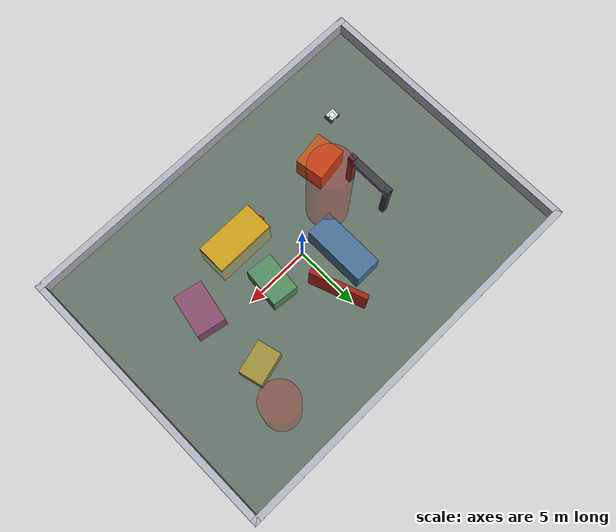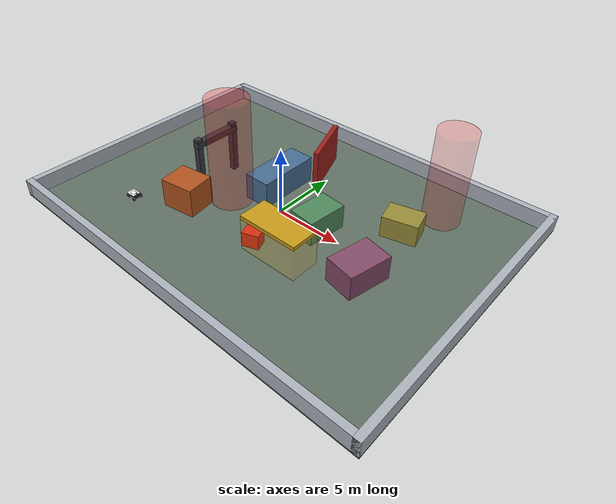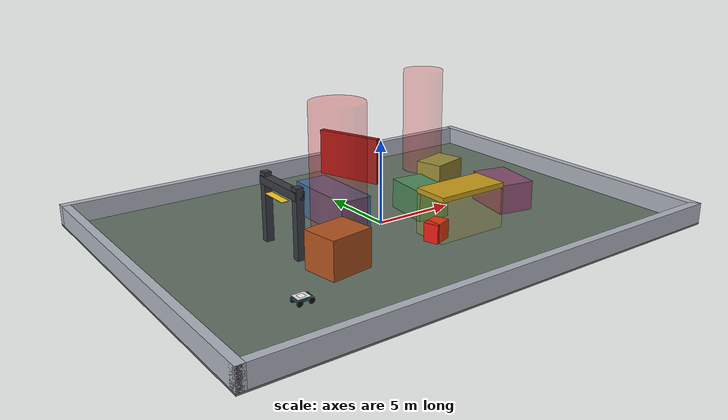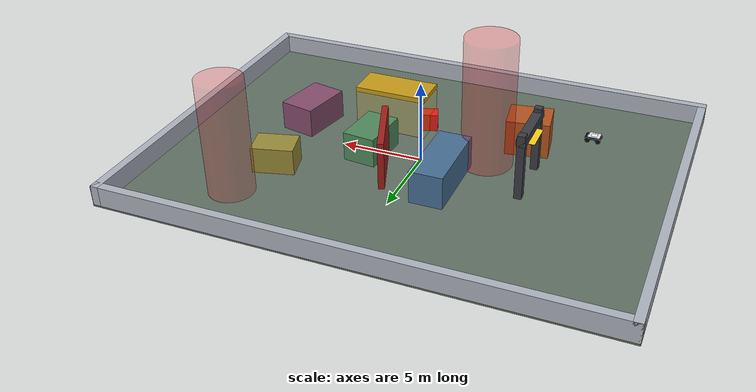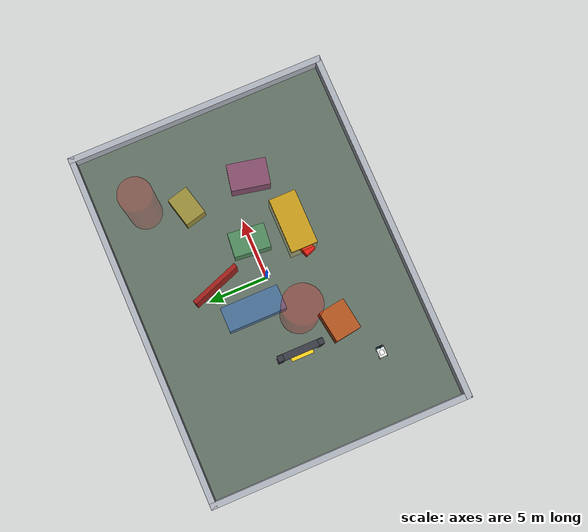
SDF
<sdf version="1.9">
 <world name="air_ground_cooperative">
  <physics name="1ms" type="ignore">
   <max_step_size>0.001</max_step_size>
   <real_time_factor>1.0</real_time_factor>
  </physics>
  <plugin filename="gz-sim-physics-system" name="gz::sim::systems::Physics"/>
  <plugin filename="gz-sim-sensors-system" name="gz::sim::systems::Sensors">
   <render_engine>ogre2</render_engine>
  </plugin>
  <plugin filename="gz-sim-user-commands-system" name="gz::sim::systems::UserCommands"/>
  <plugin filename="gz-sim-scene-broadcaster-system" name="gz::sim::systems::SceneBroadcaster"/>
  <plugin filename="gz-sim-imu-system" name="gz::sim::systems::Imu"/>
  <plugin filename="gz-sim-navsat-system" name="gz::sim::systems::NavSat"/>
  <plugin filename="gz-sim-magnetometer-system" name="gz::sim::systems::Magnetometer"/>
  <plugin filename="gz-sim-air-pressure-system" name="gz::sim::systems::AirPressure"/>
  <scene>
   <ambient>0.72 0.75 0.78 1</ambient>
   <background>0.44 0.62 0.78 1</background>
   <shadows>true</shadows>
  </scene>
  <spherical_coordinates>
   <latitude_deg>-35.363262</latitude_deg>
   <longitude_deg>149.165237</longitude_deg>
   <elevation>584</elevation>
   <heading_deg>0</heading_deg>
   <surface_model>EARTH_WGS84</surface_model>
  </spherical_coordinates>
  <light type="directional" name="sun">
   <pose>0 0 24 0 0 0</pose>
   <diffuse>0.95 0.94 0.90 1</diffuse>
   <specular>0.20 0.20 0.20 1</specular>
   <direction>-0.45 0.20 -0.86</direction>
  </light>
  <model name="mission_ground">
   <static>true</static>
   <link name="link">
    <pose>0 0 -0.05 0 0 0</pose>
    <collision name="collision"><geometry><box><size>30 22 0.10</size></box></geometry></collision>
    <visual name="visual">
     <geometry><box><size>30 22 0.10</size></box></geometry>
     <material><ambient>0.31 0.36 0.32 1</ambient><diffuse>0.38 0.44 0.39 1</diffuse></material>
    </visual>
   </link>
  </model>
  <model name="west_wall">
   <static>true</static>
   <pose>-14.75 0 0.60 0 0 0</pose>
   <link name="link">
    <collision name="collision"><geometry><box><size>0.5 22 1.2</size></box></geometry></collision>
    <visual name="visual">
     <geometry><box><size>0.5 22 1.2</size></box></geometry>
     <material><ambient>0.56 0.58 0.62 1</ambient><diffuse>0.68 0.70 0.74 1</diffuse></material>
    </visual>
   </link>
  </model>
  <model name="east_wall">
   <static>true</static>
   <pose>14.75 0 0.60 0 0 0</pose>
   <link name="link">
    <collision name="collision"><geometry><box><size>0.5 22 1.2</size></box></geometry></collision>
    <visual name="visual">
     <geometry><box><size>0.5 22 1.2</size></box></geometry>
     <material><ambient>0.56 0.58 0.62 1</ambient><diffuse>0.68 0.70 0.74 1</diffuse></material>
    </visual>
   </link>
  </model>
  <model name="north_wall">
   <static>true</static>
   <pose>0 10.75 0.60 0 0 0</pose>
   <link name="link">
    <collision name="collision"><geometry><box><size>30 0.5 1.2</size></box></geometry></collision>
    <visual name="visual">
     <geometry><box><size>30 0.5 1.2</size></box></geometry>
     <material><ambient>0.56 0.58 0.62 1</ambient><diffuse>0.68 0.70 0.74 1</diffuse></material>
    </visual>
   </link>
  </model>
  <model name="south_wall">
   <static>true</static>
   <pose>0 -10.75 0.60 0 0 0</pose>
   <link name="link">
    <collision name="collision"><geometry><box><size>30 0.5 1.2</size></box></geometry></collision>
    <visual name="visual">
     <geometry><box><size>30 0.5 1.2</size></box></geometry>
     <material><ambient>0.56 0.58 0.62 1</ambient><diffuse>0.68 0.70 0.74 1</diffuse></material>
    </visual>
   </link>
  </model>
  <model name="warehouse_a">
   <static>true</static>
   <pose>-5.5 -3.8 1.1 0 0 0.15</pose>
   <link name="link">
    <collision name="collision"><geometry><box><size>2.6 2.2 2.2</size></box></geometry></collision>
    <visual name="visual">
     <geometry><box><size>2.6 2.2 2.2</size></box></geometry>
     <material><ambient>0.55 0.25 0.10 1</ambient><diffuse>0.70 0.33 0.12 1</diffuse></material>
    </visual>
   </link>
  </model>
  <model name="warehouse_b">
   <static>true</static>
   <pose>-2.0 2.0 1.0 0 0 0</pose>
   <link name="link">
    <collision name="collision"><geometry><box><size>2.0 4.8 2.0</size></box></geometry></collision>
    <visual name="visual">
     <geometry><box><size>2.0 4.8 2.0</size></box></geometry>
     <material><ambient>0.22 0.32 0.43 1</ambient><diffuse>0.28 0.43 0.58 1</diffuse></material>
    </visual>
   </link>
  </model>
  <model name="warehouse_c">
   <static>true</static>
   <pose>3.1 0.2 0.9 0 0 -0.10</pose>
   <link name="link">
    <collision name="collision"><geometry><box><size>2.0 3.0 1.8</size></box></geometry></collision>
    <visual name="visual">
     <geometry><box><size>2.0 3.0 1.8</size></box></geometry>
     <material><ambient>0.25 0.42 0.28 1</ambient><diffuse>0.31 0.54 0.36 1</diffuse></material>
    </visual>
   </link>
  </model>
  <model name="warehouse_d">
   <static>true</static>
   <pose>7.6 3.7 0.8 0 0 0.25</pose>
   <link name="link">
    <collision name="collision"><geometry><box><size>2.5 1.8 1.6</size></box></geometry></collision>
    <visual name="visual">
     <geometry><box><size>2.5 1.8 1.6</size></box></geometry>
     <material><ambient>0.45 0.42 0.18 1</ambient><diffuse>0.60 0.55 0.22 1</diffuse></material>
    </visual>
   </link>
  </model>
  <model name="warehouse_e">
   <static>true</static>
   <pose>8.0 -1.8 0.9 0 0 -0.20</pose>
   <link name="link">
    <collision name="collision"><geometry><box><size>2.2 3.2 1.8</size></box></geometry></collision>
    <visual name="visual">
     <geometry><box><size>2.2 3.2 1.8</size></box></geometry>
     <material><ambient>0.38 0.22 0.30 1</ambient><diffuse>0.52 0.30 0.42 1</diffuse></material>
    </visual>
   </link>
  </model>
  <model name="unmapped_pallet">
   <static>true</static>
   <pose>1.0 -3.8 0.55 0 0 0.35</pose>
   <link name="link">
    <collision name="collision"><geometry><box><size>1.2 0.9 1.1</size></box></geometry></collision>
    <visual name="visual">
     <geometry><box><size>1.2 0.9 1.1</size></box></geometry>
     <material><ambient>0.70 0.08 0.06 1</ambient><diffuse>0.90 0.12 0.08 1</diffuse></material>
    </visual>
   </link>
  </model>
  <model name="aerial_gate">
   <static>true</static>
   <pose>-6.5 0 0 0 0 0</pose>
   <link name="link">
    <collision name="left_column_collision">
     <pose>0 1.65 2.0 0 0 0</pose>
     <geometry><box><size>0.45 0.45 4.0</size></box></geometry>
    </collision>
    <collision name="right_column_collision">
     <pose>0 -1.65 2.0 0 0 0</pose>
     <geometry><box><size>0.45 0.45 4.0</size></box></geometry>
    </collision>
    <collision name="crossbar_collision">
     <pose>0 0 3.55 0 0 0</pose>
     <geometry><box><size>0.55 3.75 0.45</size></box></geometry>
    </collision>
    <visual name="left_column">
     <pose>0 1.65 2.0 0 0 0</pose>
     <geometry><box><size>0.45 0.45 4.0</size></box></geometry>
     <material><ambient>0.12 0.12 0.14 1</ambient><diffuse>0.22 0.23 0.26 1</diffuse></material>
    </visual>
    <visual name="right_column">
     <pose>0 -1.65 2.0 0 0 0</pose>
     <geometry><box><size>0.45 0.45 4.0</size></box></geometry>
     <material><ambient>0.12 0.12 0.14 1</ambient><diffuse>0.22 0.23 0.26 1</diffuse></material>
    </visual>
    <visual name="crossbar">
     <pose>0 0 3.55 0 0 0</pose>
     <geometry><box><size>0.55 3.75 0.45</size></box></geometry>
     <material><ambient>0.12 0.12 0.14 1</ambient><diffuse>0.22 0.23 0.26 1</diffuse></material>
    </visual>
    <visual name="height_label">
     <pose>-0.31 0 3.05 0 1.57079632679 0</pose>
     <geometry><box><size>0.02 1.8 0.45</size></box></geometry>
     <material><ambient>0.90 0.70 0.08 1</ambient><diffuse>1.0 0.82 0.10 1</diffuse></material>
    </visual>
   </link>
  </model>
  <model name="suspended_panel">
   <static>true</static>
   <pose>0.6 4.0 3.0 0 0 0.35</pose>
   <link name="link">
    <collision name="collision"><geometry><box><size>0.35 4.2 2.8</size></box></geometry></collision>
    <visual name="visual">
     <geometry><box><size>0.35 4.2 2.8</size></box></geometry>
     <material><ambient>0.40 0.08 0.08 1</ambient><diffuse>0.62 0.12 0.10 1</diffuse></material>
    </visual>
   </link>
  </model>
  <model name="low_ceiling">
   <static>true</static>
   <pose>3.0 -3.5 2.55 0 0 0</pose>
   <link name="link">
    <collision name="collision"><geometry><box><size>4.5 2.2 0.30</size></box></geometry></collision>
    <visual name="visual">
     <geometry><box><size>4.5 2.2 0.30</size></box></geometry>
     <material><ambient>0.58 0.45 0.08 1</ambient><diffuse>0.78 0.61 0.10 1</diffuse></material>
    </visual>
   </link>
  </model>
  <model name="no_fly_tower_volume">
   <static>true</static>
   <pose>-3.7 -1.2 4.0 0 0 0</pose>
   <link name="link">
    <visual name="volume">
     <transparency>0.74</transparency>
     <geometry><cylinder><radius>1.55</radius><length>8.0</length></cylinder></geometry>
     <material><ambient>0.65 0.02 0.02 0.28</ambient><diffuse>0.95 0.03 0.03 0.28</diffuse></material>
    </visual>
   </link>
  </model>
  <model name="height_limit_volume">
   <static>true</static>
   <pose>3.0 -3.5 1.15 0 0 0</pose>
   <link name="link">
    <visual name="volume">
     <transparency>0.80</transparency>
     <geometry><box><size>4.5 2.2 2.3</size></box></geometry>
     <material><ambient>0.80 0.58 0.02 0.20</ambient><diffuse>1.0 0.74 0.03 0.20</diffuse></material>
    </visual>
   </link>
  </model>
  <model name="no_fly_destination_volume">
   <static>true</static>
   <pose>8.7 6.9 3.5 0 0 0</pose>
   <link name="link">
    <visual name="volume">
     <transparency>0.78</transparency>
     <geometry><cylinder><radius>1.35</radius><length>7.0</length></cylinder></geometry>
     <material><ambient>0.65 0.02 0.02 0.24</ambient><diffuse>0.95 0.03 0.03 0.24</diffuse></material>
    </visual>
   </link>
  </model>
  <include><uri>model://hunter_ackermann</uri><name>ground_vehicle</name><pose>-9 -6 0 0 0 0</pose></include>
 </world>
</sdf>

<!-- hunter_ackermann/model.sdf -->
<sdf version="1.9">
  <model name="hunter_ackermann">
    <self_collide>false</self_collide>

    <!-- Hunter V2 dimensions used by the real driver and adapter:
         wheelbase 0.650 m, track 0.605 m, wheel radius 0.165 m. -->
    <link name="base_link">
      <pose>0 0 0.27 0 0 0</pose>
      <inertial>
        <mass>46.0</mass>
        <inertia>
          <ixx>1.55</ixx><iyy>2.75</iyy><izz>3.60</izz>
        </inertia>
      </inertial>
      <collision name="body_collision">
        <geometry><box><size>0.82 0.54 0.18</size></box></geometry>
      </collision>
      <visual name="body_visual">
        <geometry><box><size>0.82 0.54 0.18</size></box></geometry>
        <material>
          <ambient>0.03 0.12 0.16 1</ambient>
          <diffuse>0.05 0.28 0.36 1</diffuse>
          <specular>0.08 0.08 0.08 1</specular>
        </material>
      </visual>
      <visual name="front_bumper">
        <pose>0.45 0 -0.03 0 0 0</pose>
        <geometry><box><size>0.08 0.62 0.10</size></box></geometry>
        <material><ambient>0.04 0.04 0.04 1</ambient><diffuse>0.08 0.08 0.08 1</diffuse></material>
      </visual>
      <visual name="landing_pad">
        <pose>-0.05 0 0.105 0 0 0</pose>
        <geometry><box><size>0.74 0.64 0.018</size></box></geometry>
        <material><ambient>0.8 0.8 0.8 1</ambient><diffuse>0.9 0.9 0.9 1</diffuse></material>
      </visual>
      <collision name="landing_pad_collision">
        <pose>-0.05 0 0.105 0 0 0</pose>
        <geometry><box><size>0.74 0.64 0.018</size></box></geometry>
        <surface>
          <friction><ode><mu>1.4</mu><mu2>1.4</mu2></ode></friction>
          <contact><ode><kp>1000000</kp><kd>100</kd></ode></contact>
        </surface>
      </collision>
      <visual name="apriltag_id0">
        <pose>-0.05 0 0.115 0 0 0</pose>
        <geometry><plane><normal>0 0 1</normal><size>0.36 0.36</size></plane></geometry>
        <material>
          <ambient>1 1 1 1</ambient><diffuse>1 1 1 1</diffuse><specular>0 0 0 1</specular>
          <pbr>
            <metal>
              <albedo_map>model://ground_vehicle/materials/textures/tag36h11_id0.png</albedo_map>
              <metalness>0.0</metalness><roughness>1.0</roughness>
            </metal>
          </pbr>
        </material>
      </visual>
    </link>

    <link name="front_left_steering_link">
      <pose>0.325 0.3025 0.165 0 0 0</pose>
      <inertial><mass>0.35</mass><inertia><ixx>0.002</ixx><iyy>0.002</iyy><izz>0.002</izz></inertia></inertial>
      <visual name="hub"><geometry><cylinder><radius>0.035</radius><length>0.08</length></cylinder></geometry></visual>
    </link>
    <link name="front_right_steering_link">
      <pose>0.325 -0.3025 0.165 0 0 0</pose>
      <inertial><mass>0.35</mass><inertia><ixx>0.002</ixx><iyy>0.002</iyy><izz>0.002</izz></inertia></inertial>
      <visual name="hub"><geometry><cylinder><radius>0.035</radius><length>0.08</length></cylinder></geometry></visual>
    </link>

    <link name="front_left_wheel">
      <pose>0.325 0.3025 0.165 -1.57079632679 0 0</pose>
      <inertial><mass>2.2</mass><inertia><ixx>0.035</ixx><iyy>0.035</iyy><izz>0.060</izz></inertia></inertial>
      <collision name="collision">
        <geometry><cylinder><radius>0.165</radius><length>0.08</length></cylinder></geometry>
        <surface><friction><ode><mu>0.8</mu><mu2>1.4</mu2><fdir1>0 0 1</fdir1></ode></friction></surface>
      </collision>
      <visual name="visual"><geometry><cylinder><radius>0.165</radius><length>0.08</length></cylinder></geometry><material><ambient>0.02 0.02 0.02 1</ambient><diffuse>0.05 0.05 0.05 1</diffuse></material></visual>
    </link>
    <link name="front_right_wheel">
      <pose>0.325 -0.3025 0.165 -1.57079632679 0 0</pose>
      <inertial><mass>2.2</mass><inertia><ixx>0.035</ixx><iyy>0.035</iyy><izz>0.060</izz></inertia></inertial>
      <collision name="collision">
        <geometry><cylinder><radius>0.165</radius><length>0.08</length></cylinder></geometry>
        <surface><friction><ode><mu>0.8</mu><mu2>1.4</mu2><fdir1>0 0 1</fdir1></ode></friction></surface>
      </collision>
      <visual name="visual"><geometry><cylinder><radius>0.165</radius><length>0.08</length></cylinder></geometry><material><ambient>0.02 0.02 0.02 1</ambient><diffuse>0.05 0.05 0.05 1</diffuse></material></visual>
    </link>
    <link name="rear_left_wheel">
      <pose>-0.325 0.3025 0.165 -1.57079632679 0 0</pose>
      <inertial><mass>2.2</mass><inertia><ixx>0.035</ixx><iyy>0.035</iyy><izz>0.060</izz></inertia></inertial>
      <collision name="collision">
        <geometry><cylinder><radius>0.165</radius><length>0.08</length></cylinder></geometry>
        <surface><friction><ode><mu>0.8</mu><mu2>1.4</mu2><fdir1>0 0 1</fdir1></ode></friction></surface>
      </collision>
      <visual name="visual"><geometry><cylinder><radius>0.165</radius><length>0.08</length></cylinder></geometry><material><ambient>0.02 0.02 0.02 1</ambient><diffuse>0.05 0.05 0.05 1</diffuse></material></visual>
    </link>
    <link name="rear_right_wheel">
      <pose>-0.325 -0.3025 0.165 -1.57079632679 0 0</pose>
      <inertial><mass>2.2</mass><inertia><ixx>0.035</ixx><iyy>0.035</iyy><izz>0.060</izz></inertia></inertial>
      <collision name="collision">
        <geometry><cylinder><radius>0.165</radius><length>0.08</length></cylinder></geometry>
        <surface><friction><ode><mu>0.8</mu><mu2>1.4</mu2><fdir1>0 0 1</fdir1></ode></friction></surface>
      </collision>
      <visual name="visual"><geometry><cylinder><radius>0.165</radius><length>0.08</length></cylinder></geometry><material><ambient>0.02 0.02 0.02 1</ambient><diffuse>0.05 0.05 0.05 1</diffuse></material></visual>
    </link>

    <joint name="front_left_steering_joint" type="revolute">
      <parent>base_link</parent><child>front_left_steering_link</child>
      <axis><xyz>0 0 1</xyz><limit><lower>-0.52</lower><upper>0.52</upper><velocity>1.5</velocity><effort>80</effort></limit></axis>
    </joint>
    <joint name="front_right_steering_joint" type="revolute">
      <parent>base_link</parent><child>front_right_steering_link</child>
      <axis><xyz>0 0 1</xyz><limit><lower>-0.52</lower><upper>0.52</upper><velocity>1.5</velocity><effort>80</effort></limit></axis>
    </joint>
    <joint name="front_left_wheel_joint" type="revolute">
      <parent>front_left_steering_link</parent><child>front_left_wheel</child>
      <!-- The wheel links are rolled -90 deg so positive local-Z joint
           velocity propels the chassis along +X, matching ROS convention. -->
      <axis><xyz>0 0 1</xyz><limit><lower>-1.0e16</lower><upper>1.0e16</upper></limit></axis>
    </joint>
    <joint name="front_right_wheel_joint" type="revolute">
      <parent>front_right_steering_link</parent><child>front_right_wheel</child>
      <axis><xyz>0 0 1</xyz><limit><lower>-1.0e16</lower><upper>1.0e16</upper></limit></axis>
    </joint>
    <joint name="rear_left_wheel_joint" type="revolute">
      <parent>base_link</parent><child>rear_left_wheel</child>
      <axis><xyz>0 0 1</xyz><limit><lower>-1.0e16</lower><upper>1.0e16</upper></limit></axis>
    </joint>
    <joint name="rear_right_wheel_joint" type="revolute">
      <parent>base_link</parent><child>rear_right_wheel</child>
      <axis><xyz>0 0 1</xyz><limit><lower>-1.0e16</lower><upper>1.0e16</upper></limit></axis>
    </joint>

    <link name="lidar_link">
      <pose relative_to="base_link">0.30 0 0.18 0 0 0</pose>
      <gravity>false</gravity>
      <inertial><mass>0.20</mass><inertia><ixx>0.0004</ixx><iyy>0.0004</iyy><izz>0.0004</izz></inertia></inertial>
      <visual name="visual"><geometry><cylinder><radius>0.045</radius><length>0.055</length></cylinder></geometry><material><ambient>0.04 0.04 0.04 1</ambient><diffuse>0.10 0.10 0.10 1</diffuse></material></visual>
      <sensor name="lidar" type="gpu_lidar">
        <topic>/model/ground_vehicle/scan</topic>
        <gz_frame_id>laser_frame</gz_frame_id>
        <always_on>true</always_on><update_rate>6</update_rate><visualize>false</visualize>
        <lidar>
          <scan><horizontal><samples>360</samples><resolution>1</resolution><min_angle>-3.14159265359</min_angle><max_angle>3.14159265359</max_angle></horizontal></scan>
          <range><min>0.12</min><max>20.0</max><resolution>0.01</resolution></range>
          <noise><type>gaussian</type><mean>0.0</mean><stddev>0.01</stddev></noise>
        </lidar>
      </sensor>
    </link>
    <joint name="lidar_mount" type="fixed"><parent>base_link</parent><child>lidar_link</child></joint>

    <link name="front_camera_link">
      <pose relative_to="base_link">0.39 0 0.08 0 0 0</pose>
      <gravity>false</gravity>
      <inertial><mass>0.08</mass><inertia><ixx>0.0001</ixx><iyy>0.0001</iyy><izz>0.0001</izz></inertia></inertial>
      <visual name="visual"><geometry><box><size>0.05 0.06 0.04</size></box></geometry><material><ambient>0.05 0.05 0.05 1</ambient><diffuse>0.10 0.10 0.10 1</diffuse></material></visual>
      <sensor name="front_camera" type="camera">
        <topic>/model/ground_vehicle/front_camera</topic>
        <gz_frame_id>ugv_camera_link</gz_frame_id>
        <!-- The navigation stack uses lidar, not this operator video. Keep the
             camera dormant until the lazy dashboard bridge has a viewer. -->
        <always_on>false</always_on><update_rate>4</update_rate><visualize>false</visualize>
        <camera>
          <horizontal_fov>1.3962634</horizontal_fov>
          <image><width>320</width><height>180</height><format>R8G8B8</format></image>
          <clip><near>0.08</near><far>30.0</far></clip>
          <noise><type>gaussian</type><mean>0.0</mean><stddev>0.003</stddev></noise>
        </camera>
      </sensor>
    </link>
    <joint name="front_camera_mount" type="fixed"><parent>base_link</parent><child>front_camera_link</child></joint>

    <link name="imu_link">
      <pose relative_to="base_link">0 0 0.04 0 0 0</pose>
      <gravity>false</gravity>
      <inertial><mass>0.02</mass><inertia><ixx>0.00001</ixx><iyy>0.00001</iyy><izz>0.00001</izz></inertia></inertial>
      <sensor name="imu" type="imu">
        <topic>/model/ground_vehicle/imu</topic>
        <gz_frame_id>imu_link</gz_frame_id>
        <always_on>true</always_on><update_rate>50</update_rate>
      </sensor>
    </link>
    <joint name="imu_mount" type="fixed"><parent>base_link</parent><child>imu_link</child></joint>

    <plugin filename="gz-sim-ackermann-steering-system" name="gz::sim::systems::AckermannSteering">
      <left_joint>front_left_wheel_joint</left_joint>
      <left_joint>rear_left_wheel_joint</left_joint>
      <right_joint>front_right_wheel_joint</right_joint>
      <right_joint>rear_right_wheel_joint</right_joint>
      <left_steering_joint>front_left_steering_joint</left_steering_joint>
      <right_steering_joint>front_right_steering_joint</right_steering_joint>
      <kingpin_width>0.605</kingpin_width>
      <!-- Hunter-class minimum turning radius is approximately 1.5 m. -->
      <steering_limit>0.41</steering_limit>
      <steer_p_gain>8.0</steer_p_gain>
      <wheel_base>0.650</wheel_base>
      <wheel_separation>0.605</wheel_separation>
      <wheel_radius>0.165</wheel_radius>
      <topic>/model/ground_vehicle/cmd_vel</topic>
      <odom_topic>/model/ground_vehicle/odometry</odom_topic>
      <tf_topic>/model/ground_vehicle/tf</tf_topic>
      <frame_id>odom</frame_id>
      <child_frame_id>base_link</child_frame_id>
      <odom_publish_frequency>30</odom_publish_frequency>
      <min_velocity>-1.5</min_velocity><max_velocity>1.5</max_velocity>
      <min_acceleration>-1.0</min_acceleration><max_acceleration>1.0</max_acceleration>
      <min_jerk>-4.0</min_jerk><max_jerk>4.0</max_jerk>
    </plugin>

    <plugin filename="gz-sim-detachable-joint-system"
            name="gz::sim::systems::DetachableJoint">
      <parent_link>base_link</parent_link>
      <child_model>uav</child_model>
      <child_link>dock_link</child_link>
      <detach_topic>/uav/dock/detach</detach_topic>
      <attach_topic>/uav/dock/attach</attach_topic>
      <output_topic>/uav/dock/detached</output_topic>
      <suppress_child_warning>true</suppress_child_warning>
    </plugin>
  </model>
</sdf>
